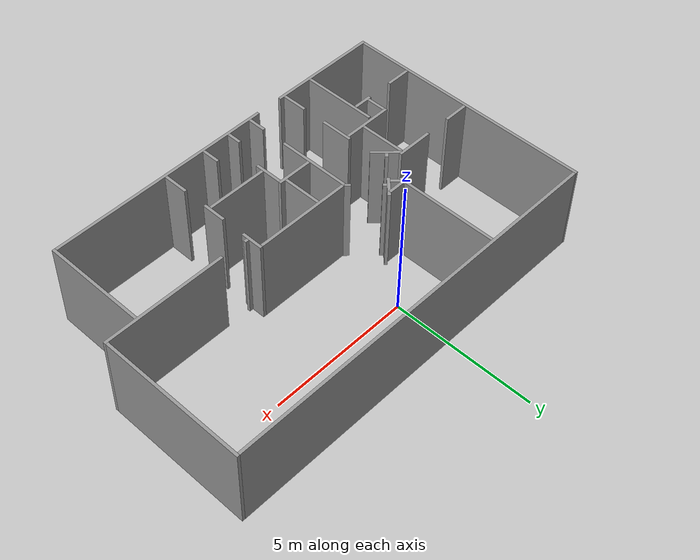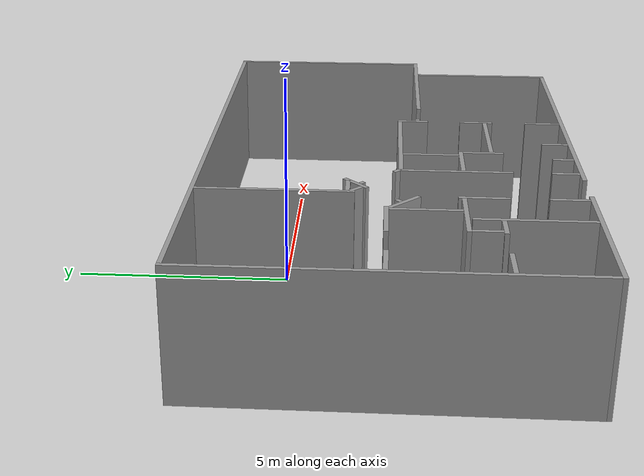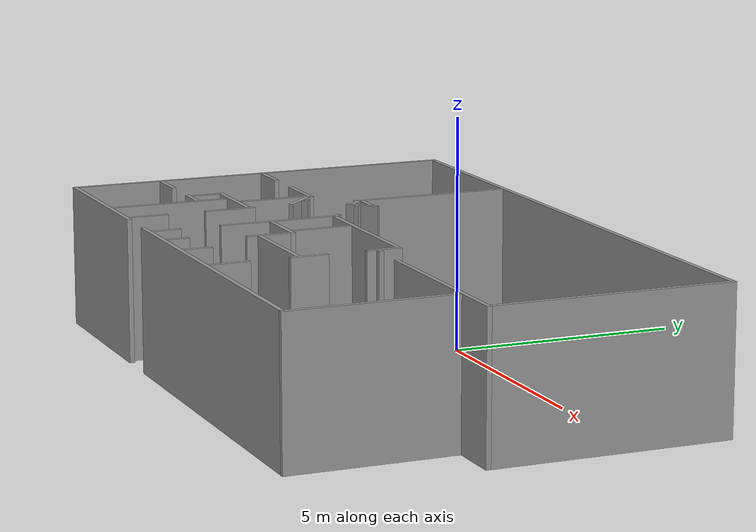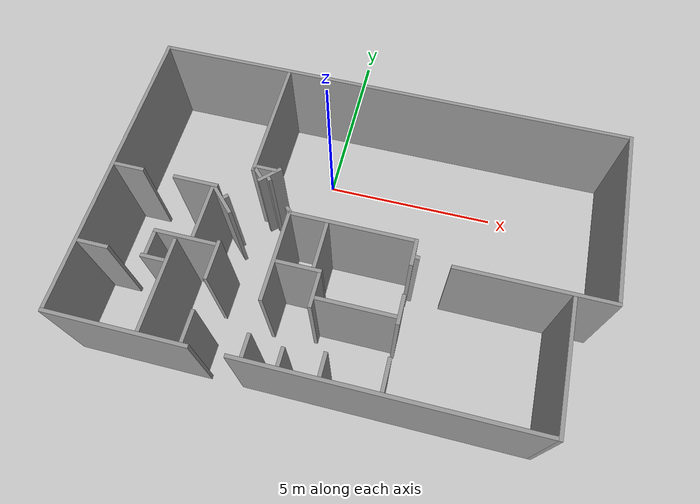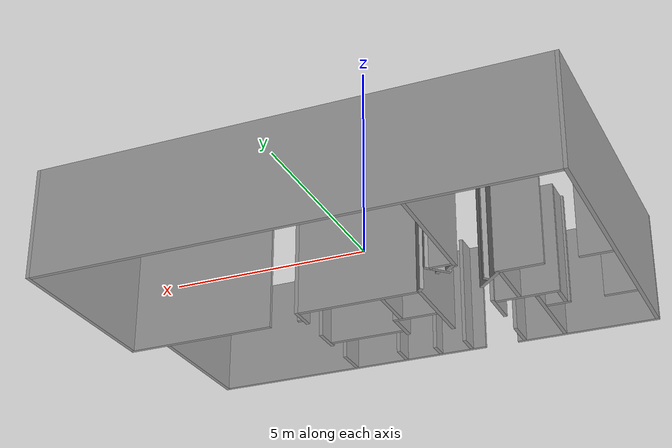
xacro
<?xml version="1.0"?>
<robot name="$(arg robot_name)" xmlns:xacro="http://www.ros.org/wiki/xacro">

  <!-- Peavy - This file was mostly auto-generated from an SDF to
       URDF conversion. Some slight modifications made to get
       it to load into Gazebo properly. -->

  <!-- in the case of multiple floors, have each structure link to its own floor -->

  <link name="building_footprint_link" />

  <!-- floor 1 -->
  <joint name="floor1_joint" type="fixed">
    <parent link="building_footprint_link" />
    <origin xyz="0 0 0" rpy="0 0 0" />
    <child link="floor1_link" />
  </joint>
  <link name="floor1_link">
    <inertial>
      <mass value="10000" />
      <com xyz="0 0 0.0" />
      <inertia ixx="10" ixy="0"  ixz="0"
                        iyy="10" iyz="0"
                                 izz="10" />
    </inertial>
    <visual>
      <origin xyz="0 0 0" rpy="0 0 0" />
      <geometry name="floor1_visual_geom">
        <box size="0.001 0.001 0.001" />
      </geometry>
    </visual>
    <collision>
      <origin xyz="0 0 0" rpy="0 0 0" />
      <geometry name="floor1_collision_geom">
        <box size="0.001 0.001 0.001" />
      </geometry>
    </collision>
  </link>
  <gazebo reference="floor1_link">
    <material>PR2/Grey</material>
    <mu1>50.0</mu1>
    <mu2>50.0</mu2>
    <kp>1000000000.0</kp>
    <kd>1.0</kd>
  </gazebo>

  <!-- building links and joints - these connect into the floor1_link -->

  <joint name="three_walls__Wall_0_joint" type="fixed" >
    <parent link="floor1_link" />
    <origin xyz="-6.3315 0.41704 0" rpy="0 0 0" />
    <child link="three_walls__Wall_0" />
  </joint>
  <gazebo reference="three_walls__Wall_0">
    <material>PR2/Grey2</material>
    <laserRetro>1000</laserRetro>
    <selfCollide>false</selfCollide>

  </gazebo>
  <joint name="three_walls__Wall_1_joint" type="fixed" >
    <parent link="floor1_link" />
    <origin xyz="-6.3315 0.41704 0" rpy="0 0 0" />
    <child link="three_walls__Wall_1" />
  </joint>
  <gazebo reference="three_walls__Wall_1">
    <material>PR2/Grey2</material>
    <laserRetro>1000</laserRetro>
    <selfCollide>false</selfCollide>

  </gazebo>
  <joint name="three_walls__Wall_2_joint" type="fixed" >
    <parent link="floor1_link" />
    <origin xyz="-6.3315 0.41704 0" rpy="0 0 0" />
    <child link="three_walls__Wall_2" />
  </joint>
  <gazebo reference="three_walls__Wall_2">
    <material>PR2/Grey2</material>
    <laserRetro>1000</laserRetro>
    <selfCollide>false</selfCollide>

  </gazebo>
  <joint name="three_walls__Wall_3_joint" type="fixed" >
    <parent link="floor1_link" />
    <origin xyz="-6.3315 0.41704 0" rpy="0 0 0" />
    <child link="three_walls__Wall_3" />
  </joint>
  <gazebo reference="three_walls__Wall_3">
    <material>PR2/Grey2</material>
    <laserRetro>1000</laserRetro>
    <selfCollide>false</selfCollide>

  </gazebo>
  <joint name="three_walls__Wall_4_joint" type="fixed" >
    <parent link="floor1_link" />
    <origin xyz="-6.3315 0.41704 0" rpy="0 0 0" />
    <child link="three_walls__Wall_4" />
  </joint>
  <gazebo reference="three_walls__Wall_4">
    <material>PR2/Grey2</material>
    <laserRetro>1000</laserRetro>
    <selfCollide>false</selfCollide>

  </gazebo>
  <joint name="three_walls__Wall_5_joint" type="fixed" >
    <parent link="floor1_link" />
    <origin xyz="-6.3315 0.41704 0" rpy="0 0 0" />
    <child link="three_walls__Wall_5" />
  </joint>
  <gazebo reference="three_walls__Wall_5">
    <material>PR2/Grey2</material>
    <laserRetro>1000</laserRetro>
    <selfCollide>false</selfCollide>

  </gazebo>
  <joint name="three_walls__Wall_6_joint" type="fixed" >
    <parent link="floor1_link" />
    <origin xyz="-6.3315 0.41704 0" rpy="0 0 0" />
    <child link="three_walls__Wall_6" />
  </joint>
  <gazebo reference="three_walls__Wall_6">
    <material>PR2/Grey2</material>
    <laserRetro>1000</laserRetro>
    <selfCollide>false</selfCollide>

  </gazebo>
  <joint name="three_walls__Wall_7_joint" type="fixed" >
    <parent link="floor1_link" />
    <origin xyz="-6.3315 0.41704 0" rpy="0 0 0" />
    <child link="three_walls__Wall_7" />
  </joint>
  <gazebo reference="three_walls__Wall_7">
    <material>PR2/Grey2</material>
    <laserRetro>1000</laserRetro>
    <selfCollide>false</selfCollide>

  </gazebo>
  <joint name="three_walls__Wall_8_joint" type="fixed" >
    <parent link="floor1_link" />
    <origin xyz="-6.3315 0.41704 0" rpy="0 0 0" />
    <child link="three_walls__Wall_8" />
  </joint>
  <gazebo reference="three_walls__Wall_8">
    <material>PR2/Grey2</material>
    <laserRetro>1000</laserRetro>
    <selfCollide>false</selfCollide>

  </gazebo>
  <joint name="three_walls__Wall_9_joint" type="fixed" >
    <parent link="floor1_link" />
    <origin xyz="-6.3315 0.41704 0" rpy="0 0 0" />
    <child link="three_walls__Wall_9" />
  </joint>
  <gazebo reference="three_walls__Wall_9">
    <material>PR2/Grey2</material>
    <laserRetro>1000</laserRetro>
    <selfCollide>false</selfCollide>

  </gazebo>
  <joint name="three_walls__Wall_10_joint" type="fixed" >
    <parent link="floor1_link" />
    <origin xyz="-6.3315 0.41704 0" rpy="0 0 0" />
    <child link="three_walls__Wall_10" />
  </joint>
  <gazebo reference="three_walls__Wall_10">
    <material>PR2/Grey2</material>
    <laserRetro>1000</laserRetro>
    <selfCollide>false</selfCollide>

  </gazebo>
  <joint name="three_walls__Wall_11_joint" type="fixed" >
    <parent link="floor1_link" />
    <origin xyz="-6.3315 0.41704 0" rpy="0 0 0" />
    <child link="three_walls__Wall_11" />
  </joint>
  <gazebo reference="three_walls__Wall_11">
    <material>PR2/Grey2</material>
    <laserRetro>1000</laserRetro>
    <selfCollide>false</selfCollide>

  </gazebo>
  <joint name="three_walls__Wall_12_joint" type="fixed" >
    <parent link="floor1_link" />
    <origin xyz="-6.3315 0.41704 0" rpy="0 0 0" />
    <child link="three_walls__Wall_12" />
  </joint>
  <gazebo reference="three_walls__Wall_12">
    <material>PR2/Grey2</material>
    <laserRetro>1000</laserRetro>
    <selfCollide>false</selfCollide>

  </gazebo>
  <joint name="three_walls__Wall_13_joint" type="fixed" >
    <parent link="floor1_link" />
    <origin xyz="-6.3315 0.41704 0" rpy="0 0 0" />
    <child link="three_walls__Wall_13" />
  </joint>
  <gazebo reference="three_walls__Wall_13">
    <material>PR2/Grey2</material>
    <laserRetro>1000</laserRetro>
    <selfCollide>false</selfCollide>

  </gazebo>
  <joint name="three_walls__Wall_14_joint" type="fixed" >
    <parent link="floor1_link" />
    <origin xyz="-6.3315 0.41704 0" rpy="0 0 0" />
    <child link="three_walls__Wall_14" />
  </joint>
  <gazebo reference="three_walls__Wall_14">
    <material>PR2/Grey2</material>
    <laserRetro>1000</laserRetro>
    <selfCollide>false</selfCollide>

  </gazebo>
  <joint name="three_walls__Wall_15_joint" type="fixed" >
    <parent link="floor1_link" />
    <origin xyz="-6.3315 0.41704 0" rpy="0 0 0" />
    <child link="three_walls__Wall_15" />
  </joint>
  <gazebo reference="three_walls__Wall_15">
    <material>PR2/Grey2</material>
    <laserRetro>1000</laserRetro>
    <selfCollide>false</selfCollide>

  </gazebo>
  <joint name="three_walls__Wall_16_joint" type="fixed" >
    <parent link="floor1_link" />
    <origin xyz="-6.3315 0.41704 0" rpy="0 0 0" />
    <child link="three_walls__Wall_16" />
  </joint>
  <gazebo reference="three_walls__Wall_16">
    <material>PR2/Grey2</material>
    <laserRetro>1000</laserRetro>
    <selfCollide>false</selfCollide>

  </gazebo>
  <joint name="three_walls__Wall_17_joint" type="fixed" >
    <parent link="floor1_link" />
    <origin xyz="-6.3315 0.41704 0" rpy="0 0 0" />
    <child link="three_walls__Wall_17" />
  </joint>
  <gazebo reference="three_walls__Wall_17">
    <material>PR2/Grey2</material>
    <laserRetro>1000</laserRetro>
    <selfCollide>false</selfCollide>

  </gazebo>
  <joint name="three_walls__Wall_18_joint" type="fixed" >
    <parent link="floor1_link" />
    <origin xyz="-6.3315 0.41704 0" rpy="0 0 0" />
    <child link="three_walls__Wall_18" />
  </joint>
  <gazebo reference="three_walls__Wall_18">
    <material>PR2/Grey2</material>
    <laserRetro>1000</laserRetro>
    <selfCollide>false</selfCollide>

  </gazebo>
  <joint name="three_walls__Wall_19_joint" type="fixed" >
    <parent link="floor1_link" />
    <origin xyz="-6.3315 0.41704 0" rpy="0 0 0" />
    <child link="three_walls__Wall_19" />
  </joint>
  <gazebo reference="three_walls__Wall_19">
    <material>PR2/Grey2</material>
    <laserRetro>1000</laserRetro>
    <selfCollide>false</selfCollide>

  </gazebo>
  <joint name="three_walls__Wall_20_joint" type="fixed" >
    <parent link="floor1_link" />
    <origin xyz="-6.3315 0.41704 0" rpy="0 0 0" />
    <child link="three_walls__Wall_20" />
  </joint>
  <gazebo reference="three_walls__Wall_20">
    <material>PR2/Grey2</material>
    <laserRetro>1000</laserRetro>
    <selfCollide>false</selfCollide>

  </gazebo>
  <joint name="three_walls__Wall_21_joint" type="fixed" >
    <parent link="floor1_link" />
    <origin xyz="-6.3315 0.41704 0" rpy="0 0 0" />
    <child link="three_walls__Wall_21" />
  </joint>
  <gazebo reference="three_walls__Wall_21">
    <material>PR2/Grey2</material>
    <laserRetro>1000</laserRetro>
    <selfCollide>false</selfCollide>

  </gazebo>
  <joint name="three_walls__Wall_22_joint" type="fixed" >
    <parent link="floor1_link" />
    <origin xyz="-6.3315 0.41704 0" rpy="0 0 0" />
    <child link="three_walls__Wall_22" />
  </joint>
  <gazebo reference="three_walls__Wall_22">
    <material>PR2/Grey2</material>
    <laserRetro>1000</laserRetro>
    <selfCollide>false</selfCollide>

  </gazebo>
  <joint name="three_walls__Wall_32_joint" type="fixed" >
    <parent link="floor1_link" />
    <origin xyz="-6.3315 0.41704 0" rpy="0 0 0" />
    <child link="three_walls__Wall_32" />
  </joint>
  <gazebo reference="three_walls__Wall_32">
    <material>PR2/Grey2</material>
    <laserRetro>1000</laserRetro>
    <selfCollide>false</selfCollide>

  </gazebo>
  <joint name="three_walls__Wall_33_joint" type="fixed" >
    <parent link="floor1_link" />
    <origin xyz="-6.3315 0.41704 0" rpy="0 0 0" />
    <child link="three_walls__Wall_33" />
  </joint>
  <gazebo reference="three_walls__Wall_33">
    <material>PR2/Grey2</material>
    <laserRetro>1000</laserRetro>
    <selfCollide>false</selfCollide>

  </gazebo>
  <joint name="three_walls__Wall_34_joint" type="fixed" >
    <parent link="floor1_link" />
    <origin xyz="-6.3315 0.41704 0" rpy="0 0 0" />
    <child link="three_walls__Wall_34" />
  </joint>
  <gazebo reference="three_walls__Wall_34">
    <material>PR2/Grey2</material>
    <laserRetro>1000</laserRetro>
    <selfCollide>false</selfCollide>

  </gazebo>
  <joint name="three_walls__Wall_35_joint" type="fixed" >
    <parent link="floor1_link" />
    <origin xyz="-6.3315 0.41704 0" rpy="0 0 0" />
    <child link="three_walls__Wall_35" />
  </joint>
  <gazebo reference="three_walls__Wall_35">
    <material>PR2/Grey2</material>
    <laserRetro>1000</laserRetro>
    <selfCollide>false</selfCollide>

  </gazebo>
  <joint name="three_walls__Wall_36_joint" type="fixed" >
    <parent link="floor1_link" />
    <origin xyz="-6.3315 0.41704 0" rpy="0 0 0" />
    <child link="three_walls__Wall_36" />
  </joint>
  <gazebo reference="three_walls__Wall_36">
    <material>PR2/Grey2</material>
    <laserRetro>1000</laserRetro>
    <selfCollide>false</selfCollide>

  </gazebo>
  <joint name="three_walls__Wall_37_joint" type="fixed" >
    <parent link="floor1_link" />
    <origin xyz="-6.3315 0.41704 0" rpy="0 0 0" />
    <child link="three_walls__Wall_37" />
  </joint>
  <gazebo reference="three_walls__Wall_37">
    <material>PR2/Grey2</material>
    <laserRetro>1000</laserRetro>
    <selfCollide>false</selfCollide>

  </gazebo>
  <joint name="three_walls__Wall_38_joint" type="fixed" >
    <parent link="floor1_link" />
    <origin xyz="-6.3315 0.41704 0" rpy="0 0 0" />
    <child link="three_walls__Wall_38" />
  </joint>
  <gazebo reference="three_walls__Wall_38">
    <material>PR2/Grey2</material>
    <laserRetro>1000</laserRetro>
    <selfCollide>false</selfCollide>

  </gazebo>
  <joint name="three_walls__Wall_39_joint" type="fixed" >
    <parent link="floor1_link" />
    <origin xyz="-6.3315 0.41704 0" rpy="0 0 0" />
    <child link="three_walls__Wall_39" />
  </joint>
  <gazebo reference="three_walls__Wall_39">
    <material>PR2/Grey2</material>
    <laserRetro>1000</laserRetro>
    <selfCollide>false</selfCollide>

  </gazebo>
  <joint name="three_walls__Wall_40_joint" type="fixed" >
    <parent link="floor1_link" />
    <origin xyz="-6.3315 0.41704 0" rpy="0 0 0" />
    <child link="three_walls__Wall_40" />
  </joint>
  <gazebo reference="three_walls__Wall_40">
    <material>PR2/Grey2</material>
    <laserRetro>1000</laserRetro>
    <selfCollide>false</selfCollide>

  </gazebo>
  <joint name="three_walls__Wall_41_joint" type="fixed" >
    <parent link="floor1_link" />
    <origin xyz="-6.3315 0.41704 0" rpy="0 0 0" />
    <child link="three_walls__Wall_41" />
  </joint>
  <gazebo reference="three_walls__Wall_41">
    <material>PR2/Grey2</material>
    <laserRetro>1000</laserRetro>
    <selfCollide>false</selfCollide>

  </gazebo>
  <joint name="three_walls__Wall_42_joint" type="fixed" >
    <parent link="floor1_link" />
    <origin xyz="-6.3315 0.41704 0" rpy="0 0 0" />
    <child link="three_walls__Wall_42" />
  </joint>
  <gazebo reference="three_walls__Wall_42">
    <material>PR2/Grey2</material>
    <laserRetro>1000</laserRetro>
    <selfCollide>false</selfCollide>

  </gazebo>
  <joint name="three_walls__Wall_43_joint" type="fixed" >
    <parent link="floor1_link" />
    <origin xyz="-6.3315 0.41704 0" rpy="0 0 0" />
    <child link="three_walls__Wall_43" />
  </joint>
  <gazebo reference="three_walls__Wall_43">
    <material>PR2/Grey2</material>
    <laserRetro>1000</laserRetro>
    <selfCollide>false</selfCollide>

  </gazebo>
  <joint name="three_walls__Wall_44_joint" type="fixed" >
    <parent link="floor1_link" />
    <origin xyz="-6.3315 0.41704 0" rpy="0 0 0" />
    <child link="three_walls__Wall_44" />
  </joint>
  <gazebo reference="three_walls__Wall_44">
    <material>PR2/Grey2</material>
    <laserRetro>1000</laserRetro>
    <selfCollide>false</selfCollide>

  </gazebo>
  <joint name="three_walls__Wall_45_joint" type="fixed" >
    <parent link="floor1_link" />
    <origin xyz="-6.3315 0.41704 0" rpy="0 0 0" />
    <child link="three_walls__Wall_45" />
  </joint>
  <gazebo reference="three_walls__Wall_45">
    <material>PR2/Grey2</material>
    <laserRetro>1000</laserRetro>
    <selfCollide>false</selfCollide>
  </gazebo>
  <joint name="three_walls__Wall_46_joint" type="fixed" >
    <parent link="floor1_link" />
    <origin xyz="-6.3315 0.41704 0" rpy="0 0 0" />
    <child link="three_walls__Wall_46" />
  </joint>
  <gazebo reference="three_walls__Wall_46">
    <material>PR2/Grey2</material>
    <laserRetro>1000</laserRetro>
    <selfCollide>false</selfCollide>
  </gazebo>

  <!-- generated links -->

  <link name="three_walls__Wall_0">
    <inertial>
      <mass value="0"/>
      <origin rpy="0  0  0" xyz="0  0  0"/>
      <inertia ixx="0" ixy="0" ixz="0" iyy="0" iyz="0" izz="0"/>
    </inertial>
    <collision name="three_walls__Wall_0_Collision">
      <origin rpy="0       0       3.14159" xyz="2.70472 -7.05239  1.524"/>
      <geometry>
        <box size="3.8508 0.1016 3.048"/>
      </geometry>
    </collision>
    <visual name="three_walls__Wall_0_Visual">
      <origin rpy="0       0       3.14159" xyz="2.70472 -7.05239  1.524"/>
      <geometry>
        <box size="3.8508 0.1016 3.048"/>
      </geometry>
    </visual>
  </link>
  <link name="three_walls__Wall_1">
    <inertial>
      <mass value="0"/>
      <origin rpy="0  0  0" xyz="0  0  0"/>
      <inertia ixx="0" ixy="0" ixz="0" iyy="0" iyz="0" izz="0"/>
    </inertial>
    <collision name="three_walls__Wall_1_Collision">
      <origin rpy="0      0      1.5708" xyz="0.83012 -2.73121  1.524"/>
      <geometry>
        <box size="8.54075 0.1016 3.048"/>
      </geometry>
    </collision>
    <visual name="three_walls__Wall_1_Visual">
      <origin rpy="0      0      1.5708" xyz="0.83012 -2.73121  1.524"/>
      <geometry>
        <box size="8.54075 0.1016 3.048"/>
      </geometry>
    </visual>
  </link>
  <link name="three_walls__Wall_2">
    <inertial>
      <mass value="0"/>
      <origin rpy="0  0  0" xyz="0  0  0"/>
      <inertia ixx="0" ixy="0" ixz="0" iyy="0" iyz="0" izz="0"/>
    </inertial>
    <collision name="three_walls__Wall_2_Collision">
      <origin rpy="0  0  0" xyz="7.6722   1.48836  1.524"/>
      <geometry>
        <box size="13.5826 0.1016 3.048"/>
      </geometry>
    </collision>
    <visual name="three_walls__Wall_2_Visual">
      <origin rpy="0  0  0" xyz="7.6722   1.48836  1.524"/>
      <geometry>
        <box size="13.5826 0.1016 3.048"/>
      </geometry>
    </visual>
  </link>
  <link name="three_walls__Wall_3">
    <inertial>
      <mass value="0"/>
      <origin rpy="0  0  0" xyz="0  0  0"/>
      <inertia ixx="0" ixy="0" ixz="0" iyy="0" iyz="0" izz="0"/>
    </inertial>
    <collision name="three_walls__Wall_3_Collision">
      <origin rpy="0      0      1.5708" xyz="13.4349   -5.34106   1.524"/>
      <geometry>
        <box size="3.52425 0.1016 3.048"/>
      </geometry>
    </collision>
    <visual name="three_walls__Wall_3_Visual">
      <origin rpy="0      0      1.5708" xyz="13.4349   -5.34106   1.524"/>
      <geometry>
        <box size="3.52425 0.1016 3.048"/>
      </geometry>
    </visual>
  </link>
  <link name="three_walls__Wall_4">
    <inertial>
      <mass value="0"/>
      <origin rpy="0  0  0" xyz="0  0  0"/>
      <inertia ixx="0" ixy="0" ixz="0" iyy="0" iyz="0" izz="0"/>
    </inertial>
    <collision name="three_walls__Wall_4_Collision">
      <origin rpy="0       0       3.14159" xyz="12.4498   -3.52814   1.524"/>
      <geometry>
        <box size="4.2308 0.1016 3.048"/>
      </geometry>
    </collision>
    <visual name="three_walls__Wall_4_Visual">
      <origin rpy="0       0       3.14159" xyz="12.4498   -3.52814   1.524"/>
      <geometry>
        <box size="4.2308 0.1016 3.048"/>
      </geometry>
    </visual>
  </link>
  <link name="three_walls__Wall_5">
    <inertial>
      <mass value="0"/>
      <origin rpy="0  0  0" xyz="0  0  0"/>
      <inertia ixx="0" ixy="0" ixz="0" iyy="0" iyz="0" izz="0"/>
    </inertial>
    <collision name="three_walls__Wall_5_Collision">
      <origin rpy="0      0      1.5708" xyz="14.5144   -0.96909   1.524"/>
      <geometry>
        <box size="5.0165 0.1016 3.048"/>
      </geometry>
    </collision>
    <visual name="three_walls__Wall_5_Visual">
      <origin rpy="0      0      1.5708" xyz="14.5144   -0.96909   1.524"/>
      <geometry>
        <box size="5.0165 0.1016 3.048"/>
      </geometry>
    </visual>
  </link>
  <link name="three_walls__Wall_6">
    <inertial>
      <mass value="0"/>
      <origin rpy="0  0  0" xyz="0  0  0"/>
      <inertia ixx="0" ixy="0" ixz="0" iyy="0" iyz="0" izz="0"/>
    </inertial>
    <collision name="three_walls__Wall_6_Collision">
      <origin rpy="0      0      1.5708" xyz="5.9355  -4.26379  1.524"/>
      <geometry>
        <box size="2.5508 0.1016 3.048"/>
      </geometry>
    </collision>
    <visual name="three_walls__Wall_6_Visual">
      <origin rpy="0      0      1.5708" xyz="5.9355  -4.26379  1.524"/>
      <geometry>
        <box size="2.5508 0.1016 3.048"/>
      </geometry>
    </visual>
  </link>
  <link name="three_walls__Wall_7">
    <inertial>
      <mass value="0"/>
      <origin rpy="0  0  0" xyz="0  0  0"/>
      <inertia ixx="0" ixy="0" ixz="0" iyy="0" iyz="0" izz="0"/>
    </inertial>
    <collision name="three_walls__Wall_7_Collision">
      <origin rpy="0      0      1.5708" xyz="9.3391  -3.36379  1.524"/>
      <geometry>
        <box size="0.7508 0.1016 3.048"/>
      </geometry>
    </collision>
    <visual name="three_walls__Wall_7_Visual">
      <origin rpy="0      0      1.5708" xyz="9.3391  -3.36379  1.524"/>
      <geometry>
        <box size="0.7508 0.1016 3.048"/>
      </geometry>
    </visual>
  </link>
  <link name="three_walls__Wall_8">
    <inertial>
      <mass value="0"/>
      <origin rpy="0  0  0" xyz="0  0  0"/>
      <inertia ixx="0" ixy="0" ixz="0" iyy="0" iyz="0" izz="0"/>
    </inertial>
    <collision name="three_walls__Wall_8_Collision">
      <origin rpy="0       0       3.14159" xyz="7.6373  -3.03919  1.524"/>
      <geometry>
        <box size="3.302 0.1016 3.048"/>
      </geometry>
    </collision>
    <visual name="three_walls__Wall_8_Visual">
      <origin rpy="0       0       3.14159" xyz="7.6373  -3.03919  1.524"/>
      <geometry>
        <box size="3.302 0.1016 3.048"/>
      </geometry>
    </visual>
  </link>
  <link name="three_walls__Wall_9">
    <inertial>
      <mass value="0"/>
      <origin rpy="0  0  0" xyz="0  0  0"/>
      <inertia ixx="0" ixy="0" ixz="0" iyy="0" iyz="0" izz="0"/>
    </inertial>
    <collision name="three_walls__Wall_9_Collision">
      <origin rpy="0       0      -0.78539" xyz="5.8891  -2.95358  1.524"/>
      <geometry>
        <box size="0.200057 0.1015 3.048"/>
      </geometry>
    </collision>
    <visual name="three_walls__Wall_9_Visual">
      <origin rpy="0       0      -0.78539" xyz="5.8891  -2.95358  1.524"/>
      <geometry>
        <box size="0.200057 0.1015 3.048"/>
      </geometry>
    </visual>
  </link>
  <link name="three_walls__Wall_10">
    <inertial>
      <mass value="0"/>
      <origin rpy="0  0  0" xyz="0  0  0"/>
      <inertia ixx="0" ixy="0" ixz="0" iyy="0" iyz="0" izz="0"/>
    </inertial>
    <collision name="three_walls__Wall_10_Collision">
      <origin rpy="0  0  0" xyz="3.21704 -2.71534  1.524"/>
      <geometry>
        <box size="1.26264 0.1015 3.048"/>
      </geometry>
    </collision>
    <visual name="three_walls__Wall_10_Visual">
      <origin rpy="0  0  0" xyz="3.21704 -2.71534  1.524"/>
      <geometry>
        <box size="1.26264 0.1015 3.048"/>
      </geometry>
    </visual>
  </link>
  <link name="three_walls__Wall_11">
    <inertial>
      <mass value="0"/>
      <origin rpy="0  0  0" xyz="0  0  0"/>
      <inertia ixx="0" ixy="0" ixz="0" iyy="0" iyz="0" izz="0"/>
    </inertial>
    <collision name="three_walls__Wall_11_Collision">
      <origin rpy="0       0      -0.78539" xyz="4.0834  -3.07301  1.524"/>
      <geometry>
        <box size="0.969558 0.1015 3.048"/>
      </geometry>
    </collision>
    <visual name="three_walls__Wall_11_Visual">
      <origin rpy="0       0      -0.78539" xyz="4.0834  -3.07301  1.524"/>
      <geometry>
        <box size="0.969558 0.1015 3.048"/>
      </geometry>
    </visual>
  </link>
  <link name="three_walls__Wall_12">
    <inertial>
      <mass value="0"/>
      <origin rpy="0  0  0" xyz="0  0  0"/>
      <inertia ixx="0" ixy="0" ixz="0" iyy="0" iyz="0" izz="0"/>
    </inertial>
    <collision name="three_walls__Wall_12_Collision">
      <origin rpy="0      0     -1.5708" xyz="4.42619 -6.57699  1.524"/>
      <geometry>
        <box size="0.8492 0.1016 3.048"/>
      </geometry>
    </collision>
    <visual name="three_walls__Wall_12_Visual">
      <origin rpy="0      0     -1.5708" xyz="4.42619 -6.57699  1.524"/>
      <geometry>
        <box size="0.8492 0.1016 3.048"/>
      </geometry>
    </visual>
  </link>
  <link name="three_walls__Wall_13">
    <inertial>
      <mass value="0"/>
      <origin rpy="0  0  0" xyz="0  0  0"/>
      <inertia ixx="0" ixy="0" ixz="0" iyy="0" iyz="0" izz="0"/>
    </inertial>
    <collision name="three_walls__Wall_13_Collision">
      <origin rpy="0      0     -1.5708" xyz="4.6147  -0.30015  1.524"/>
      <geometry>
        <box size="3.47544 0.1015 3.048"/>
      </geometry>
    </collision>
    <visual name="three_walls__Wall_13_Visual">
      <origin rpy="0      0     -1.5708" xyz="4.6147  -0.30015  1.524"/>
      <geometry>
        <box size="3.47544 0.1015 3.048"/>
      </geometry>
    </visual>
  </link>
  <link name="three_walls__Wall_14">
    <inertial>
      <mass value="0"/>
      <origin rpy="0  0  0" xyz="0  0  0"/>
      <inertia ixx="0" ixy="0" ixz="0" iyy="0" iyz="0" izz="0"/>
    </inertial>
    <collision name="three_walls__Wall_14_Collision">
      <origin rpy="0       0      -0.78539" xyz="4.7571  -2.05761  1.524"/>
      <geometry>
        <box size="0.360596 0.1015 3.048"/>
      </geometry>
    </collision>
    <visual name="three_walls__Wall_14_Visual">
      <origin rpy="0       0      -0.78539" xyz="4.7571  -2.05761  1.524"/>
      <geometry>
        <box size="0.360596 0.1015 3.048"/>
      </geometry>
    </visual>
  </link>
  <link name="three_walls__Wall_15">
    <inertial>
      <mass value="0"/>
      <origin rpy="0  0  0" xyz="0  0  0"/>
      <inertia ixx="0" ixy="0" ixz="0" iyy="0" iyz="0" izz="0"/>
    </inertial>
    <collision name="three_walls__Wall_15_Collision">
      <origin rpy="0       0       0.78539" xyz="5.0926  -2.04894  1.524"/>
      <geometry>
        <box size="0.722642 0.1015 3.048"/>
      </geometry>
    </collision>
    <visual name="three_walls__Wall_15_Visual">
      <origin rpy="0       0       0.78539" xyz="5.0926  -2.04894  1.524"/>
      <geometry>
        <box size="0.722642 0.1015 3.048"/>
      </geometry>
    </visual>
  </link>
  <link name="three_walls__Wall_16">
    <inertial>
      <mass value="0"/>
      <origin rpy="0  0  0" xyz="0  0  0"/>
      <inertia ixx="0" ixy="0" ixz="0" iyy="0" iyz="0" izz="0"/>
    </inertial>
    <collision name="three_walls__Wall_16_Collision">
      <origin rpy="0       0       3.14159" xyz="4.95289 -1.88017  1.524"/>
      <geometry>
        <box size="0.574782 0.1015 3.048"/>
      </geometry>
    </collision>
    <visual name="three_walls__Wall_16_Visual">
      <origin rpy="0       0       3.14159" xyz="4.95289 -1.88017  1.524"/>
      <geometry>
        <box size="0.574782 0.1015 3.048"/>
      </geometry>
    </visual>
  </link>
  <link name="three_walls__Wall_17">
    <inertial>
      <mass value="0"/>
      <origin rpy="0  0  0" xyz="0  0  0"/>
      <inertia ixx="0" ixy="0" ixz="0" iyy="0" iyz="0" izz="0"/>
    </inertial>
    <collision name="three_walls__Wall_17_Collision">
      <origin rpy="0       0       2.35618" xyz="5.1193  -2.18384  1.524"/>
      <geometry>
        <box size="0.127 0.1016 3.048"/>
      </geometry>
    </collision>
    <visual name="three_walls__Wall_17_Visual">
      <origin rpy="0       0       2.35618" xyz="5.1193  -2.18384  1.524"/>
      <geometry>
        <box size="0.127 0.1016 3.048"/>
      </geometry>
    </visual>
  </link>
  <link name="three_walls__Wall_18">
    <inertial>
      <mass value="0"/>
      <origin rpy="0  0  0" xyz="0  0  0"/>
      <inertia ixx="0" ixy="0" ixz="0" iyy="0" iyz="0" izz="0"/>
    </inertial>
    <collision name="three_walls__Wall_18_Collision">
      <origin rpy="0      0      1.5708" xyz="3.30858 -5.73159  1.524"/>
      <geometry>
        <box size="2.54 0.1016 3.048"/>
      </geometry>
    </collision>
    <visual name="three_walls__Wall_18_Visual">
      <origin rpy="0      0      1.5708" xyz="3.30858 -5.73159  1.524"/>
      <geometry>
        <box size="2.54 0.1016 3.048"/>
      </geometry>
    </visual>
  </link>
  <link name="three_walls__Wall_19">
    <inertial>
      <mass value="0"/>
      <origin rpy="0  0  0" xyz="0  0  0"/>
      <inertia ixx="0" ixy="0" ixz="0" iyy="0" iyz="0" izz="0"/>
    </inertial>
    <collision name="three_walls__Wall_19_Collision">
      <origin rpy="0       0       3.14159" xyz="3.52448 -4.35999  1.524"/>
      <geometry>
        <box size="1.7018 0.1016 3.048"/>
      </geometry>
    </collision>
    <visual name="three_walls__Wall_19_Visual">
      <origin rpy="0       0       3.14159" xyz="3.52448 -4.35999  1.524"/>
      <geometry>
        <box size="1.7018 0.1016 3.048"/>
      </geometry>
    </visual>
  </link>
  <link name="three_walls__Wall_20">
    <inertial>
      <mass value="0"/>
      <origin rpy="0  0  0" xyz="0  0  0"/>
      <inertia ixx="0" ixy="0" ixz="0" iyy="0" iyz="0" izz="0"/>
    </inertial>
    <collision name="three_walls__Wall_20_Collision">
      <origin rpy="0      0     -1.5708" xyz="2.72438 -4.72829  1.524"/>
      <geometry>
        <box size="0.635 0.1016 3.048"/>
      </geometry>
    </collision>
    <visual name="three_walls__Wall_20_Visual">
      <origin rpy="0      0     -1.5708" xyz="2.72438 -4.72829  1.524"/>
      <geometry>
        <box size="0.635 0.1016 3.048"/>
      </geometry>
    </visual>
  </link>
  <link name="three_walls__Wall_21">
    <inertial>
      <mass value="0"/>
      <origin rpy="0  0  0" xyz="0  0  0"/>
      <inertia ixx="0" ixy="0" ixz="0" iyy="0" iyz="0" izz="0"/>
    </inertial>
    <collision name="three_walls__Wall_21_Collision">
      <origin rpy="0       0       3.14159" xyz="2.93318 -5.09659  1.524"/>
      <geometry>
        <box size="0.6492 0.1016 3.048"/>
      </geometry>
    </collision>
    <visual name="three_walls__Wall_21_Visual">
      <origin rpy="0       0       3.14159" xyz="2.93318 -5.09659  1.524"/>
      <geometry>
        <box size="0.6492 0.1016 3.048"/>
      </geometry>
    </visual>
  </link>
  <link name="three_walls__Wall_22">
    <inertial>
      <mass value="0"/>
      <origin rpy="0  0  0" xyz="0  0  0"/>
      <inertia ixx="0" ixy="0" ixz="0" iyy="0" iyz="0" izz="0"/>
    </inertial>
    <collision name="three_walls__Wall_22_Collision">
      <origin rpy="0      0     -1.5708" xyz="3.7257  -3.53766  1.524"/>
      <geometry>
        <box size="1.54305 0.1015 3.048"/>
      </geometry>
    </collision>
    <visual name="three_walls__Wall_22_Visual">
      <origin rpy="0      0     -1.5708" xyz="3.7257  -3.53766  1.524"/>
      <geometry>
        <box size="1.54305 0.1015 3.048"/>
      </geometry>
    </visual>
  </link>
  <link name="three_walls__Wall_32">
    <inertial>
      <mass value="0"/>
      <origin rpy="0  0  0" xyz="0  0  0"/>
      <inertia ixx="0" ixy="0" ixz="0" iyy="0" iyz="0" izz="0"/>
    </inertial>
    <collision name="three_walls__Wall_32_Collision">
      <origin rpy="0       0       3.14159" xyz="8.2469  -5.14738  1.524"/>
      <geometry>
        <box size="2.0828 0.1016 3.048"/>
      </geometry>
    </collision>
    <visual name="three_walls__Wall_32_Visual">
      <origin rpy="0       0       3.14159" xyz="8.2469  -5.14738  1.524"/>
      <geometry>
        <box size="2.0828 0.1016 3.048"/>
      </geometry>
    </visual>
  </link>
  <link name="three_walls__Wall_33">
    <inertial>
      <mass value="0"/>
      <origin rpy="0  0  0" xyz="0  0  0"/>
      <inertia ixx="0" ixy="0" ixz="0" iyy="0" iyz="0" izz="0"/>
    </inertial>
    <collision name="three_walls__Wall_33_Collision">
      <origin rpy="0  0  0" xyz="6.5959  -4.43619  1.524"/>
      <geometry>
        <box size="1.2192 0.1016 3.048"/>
      </geometry>
    </collision>
    <visual name="three_walls__Wall_33_Visual">
      <origin rpy="0  0  0" xyz="6.5959  -4.43619  1.524"/>
      <geometry>
        <box size="1.2192 0.1016 3.048"/>
      </geometry>
    </visual>
  </link>
  <link name="three_walls__Wall_34">
    <inertial>
      <mass value="0"/>
      <origin rpy="0  0  0" xyz="0  0  0"/>
      <inertia ixx="0" ixy="0" ixz="0" iyy="0" iyz="0" izz="0"/>
    </inertial>
    <collision name="three_walls__Wall_34_Collision">
      <origin rpy="0      0     -1.5708" xyz="7.1547  -4.95688  1.524"/>
      <geometry>
        <box size="0.9398 0.1016 3.048"/>
      </geometry>
    </collision>
    <visual name="three_walls__Wall_34_Visual">
      <origin rpy="0      0     -1.5708" xyz="7.1547  -4.95688  1.524"/>
      <geometry>
        <box size="0.9398 0.1016 3.048"/>
      </geometry>
    </visual>
  </link>
  <link name="three_walls__Wall_35">
    <inertial>
      <mass value="0"/>
      <origin rpy="0  0  0" xyz="0  0  0"/>
      <inertia ixx="0" ixy="0" ixz="0" iyy="0" iyz="0" izz="0"/>
    </inertial>
    <collision name="three_walls__Wall_35_Collision">
      <origin rpy="0      0      1.5708" xyz="6.9769  -3.73769  1.524"/>
      <geometry>
        <box size="1.2954 0.1016 3.048"/>
      </geometry>
    </collision>
    <visual name="three_walls__Wall_35_Visual">
      <origin rpy="0      0      1.5708" xyz="6.9769  -3.73769  1.524"/>
      <geometry>
        <box size="1.2954 0.1016 3.048"/>
      </geometry>
    </visual>
  </link>
  <link name="three_walls__Wall_36">
    <inertial>
      <mass value="0"/>
      <origin rpy="0  0  0" xyz="0  0  0"/>
      <inertia ixx="0" ixy="0" ixz="0" iyy="0" iyz="0" izz="0"/>
    </inertial>
    <collision name="three_walls__Wall_36_Collision">
      <origin rpy="0      0      1.5708" xyz="6.8245  -6.76029  1.524"/>
      <geometry>
        <box size="0.4826 0.1016 3.048"/>
      </geometry>
    </collision>
    <visual name="three_walls__Wall_36_Visual">
      <origin rpy="0      0      1.5708" xyz="6.8245  -6.76029  1.524"/>
      <geometry>
        <box size="0.4826 0.1016 3.048"/>
      </geometry>
    </visual>
  </link>
  <link name="three_walls__Wall_37">
    <inertial>
      <mass value="0"/>
      <origin rpy="0  0  0" xyz="0  0  0"/>
      <inertia ixx="0" ixy="0" ixz="0" iyy="0" iyz="0" izz="0"/>
    </inertial>
    <collision name="three_walls__Wall_37_Collision">
      <origin rpy="0      0      1.5708" xyz="7.8405  -6.69679  1.524"/>
      <geometry>
        <box size="0.6096 0.1016 3.048"/>
      </geometry>
    </collision>
    <visual name="three_walls__Wall_37_Visual">
      <origin rpy="0      0      1.5708" xyz="7.8405  -6.69679  1.524"/>
      <geometry>
        <box size="0.6096 0.1016 3.048"/>
      </geometry>
    </visual>
  </link>
  <link name="three_walls__Wall_38">
    <inertial>
      <mass value="0"/>
      <origin rpy="0  0  0" xyz="0  0  0"/>
      <inertia ixx="0" ixy="0" ixz="0" iyy="0" iyz="0" izz="0"/>
    </inertial>
    <collision name="three_walls__Wall_38_Collision">
      <origin rpy="0  0  0" xyz="9.4545  -3.48814  1.524"/>
      <geometry>
        <box size="0.1292 0.1016 3.048"/>
      </geometry>
    </collision>
    <visual name="three_walls__Wall_38_Visual">
      <origin rpy="0  0  0" xyz="9.4545  -3.48814  1.524"/>
      <geometry>
        <box size="0.1292 0.1016 3.048"/>
      </geometry>
    </visual>
  </link>
  <link name="three_walls__Wall_39">
    <inertial>
      <mass value="0"/>
      <origin rpy="0  0  0" xyz="0  0  0"/>
      <inertia ixx="0" ixy="0" ixz="0" iyy="0" iyz="0" izz="0"/>
    </inertial>
    <collision name="three_walls__Wall_39_Collision">
      <origin rpy="0      0     -1.5708" xyz="9.3391  -4.93619  1.524"/>
      <geometry>
        <box size="0.8 0.1016 3.048"/>
      </geometry>
    </collision>
    <visual name="three_walls__Wall_39_Visual">
      <origin rpy="0      0     -1.5708" xyz="9.3391  -4.93619  1.524"/>
      <geometry>
        <box size="0.8 0.1016 3.048"/>
      </geometry>
    </visual>
  </link>
  <link name="three_walls__Wall_40">
    <inertial>
      <mass value="0"/>
      <origin rpy="0  0  0" xyz="0  0  0"/>
      <inertia ixx="0" ixy="0" ixz="0" iyy="0" iyz="0" izz="0"/>
    </inertial>
    <collision name="three_walls__Wall_40_Collision">
      <origin rpy="0      0     -1.5708" xyz="9.3391  -6.57699  1.524"/>
      <geometry>
        <box size="0.8492 0.1016 3.048"/>
      </geometry>
    </collision>
    <visual name="three_walls__Wall_40_Visual">
      <origin rpy="0      0     -1.5708" xyz="9.3391  -6.57699  1.524"/>
      <geometry>
        <box size="0.8492 0.1016 3.048"/>
      </geometry>
    </visual>
  </link>
  <link name="three_walls__Wall_41">
    <inertial>
      <mass value="0"/>
      <origin rpy="0  0  0" xyz="0  0  0"/>
      <inertia ixx="0" ixy="0" ixz="0" iyy="0" iyz="0" izz="0"/>
    </inertial>
    <collision name="three_walls__Wall_41_Collision">
      <origin rpy="0  0  0" xyz="9.4598  -7.05239  1.524"/>
      <geometry>
        <box size="7.84855 0.1016 3.048"/>
      </geometry>
    </collision>
    <visual name="three_walls__Wall_41_Visual">
      <origin rpy="0  0  0" xyz="9.4598  -7.05239  1.524"/>
      <geometry>
        <box size="7.84855 0.1016 3.048"/>
      </geometry>
    </visual>
  </link>
  <link name="three_walls__Wall_42">
    <inertial>
      <mass value="0"/>
      <origin rpy="0  0  0" xyz="0  0  0"/>
      <inertia ixx="0" ixy="0" ixz="0" iyy="0" iyz="0" izz="0"/>
    </inertial>
    <collision name="three_walls__Wall_42_Collision">
      <origin rpy="0       0       3.14159" xyz="1.30552 -5.09659  1.524"/>
      <geometry>
        <box size="0.8492 0.1016 3.048"/>
      </geometry>
    </collision>
    <visual name="three_walls__Wall_42_Visual">
      <origin rpy="0       0       3.14159" xyz="1.30552 -5.09659  1.524"/>
      <geometry>
        <box size="0.8492 0.1016 3.048"/>
      </geometry>
    </visual>
  </link>
  <link name="three_walls__Wall_43">
    <inertial>
      <mass value="0"/>
      <origin rpy="0  0  0" xyz="0  0  0"/>
      <inertia ixx="0" ixy="0" ixz="0" iyy="0" iyz="0" izz="0"/>
    </inertial>
    <collision name="three_walls__Wall_43_Collision">
      <origin rpy="0      0     -1.5708" xyz="4.42619 -4.78619  1.524"/>
      <geometry>
        <box size="1.1 0.1016 3.048"/>
      </geometry>
    </collision>
    <visual name="three_walls__Wall_43_Visual">
      <origin rpy="0      0     -1.5708" xyz="4.42619 -4.78619  1.524"/>
      <geometry>
        <box size="1.1 0.1016 3.048"/>
      </geometry>
    </visual>
  </link>
  <link name="three_walls__Wall_44">
    <inertial>
      <mass value="0"/>
      <origin rpy="0  0  0" xyz="0  0  0"/>
      <inertia ixx="0" ixy="0" ixz="0" iyy="0" iyz="0" izz="0"/>
    </inertial>
    <collision name="three_walls__Wall_44_Collision">
      <origin rpy="0       0       3.14159" xyz="1.30552 -2.71534  1.524"/>
      <geometry>
        <box size="0.8492 0.1016 3.048"/>
      </geometry>
    </collision>
    <visual name="three_walls__Wall_44_Visual">
      <origin rpy="0       0       3.14159" xyz="1.30552 -2.71534  1.524"/>
      <geometry>
        <box size="0.8492 0.1016 3.048"/>
      </geometry>
    </visual>
  </link>
  <link name="three_walls__Wall_45">
    <inertial>
      <mass value="0"/>
      <origin rpy="0  0  0" xyz="0  0  0"/>
      <inertia ixx="0" ixy="0" ixz="0" iyy="0" iyz="0" izz="0"/>
    </inertial>
    <collision name="three_walls__Wall_45_Collision">
      <origin rpy="0      0     -1.5708" xyz="5.9355  -6.69679  1.524"/>
      <geometry>
        <box size="0.6096 0.1016 3.048"/>
      </geometry>
    </collision>
    <visual name="three_walls__Wall_45_Visual">
      <origin rpy="0      0     -1.5708" xyz="5.9355  -6.69679  1.524"/>
      <geometry>
        <box size="0.6096 0.1016 3.048"/>
      </geometry>
    </visual>
  </link>
  <link name="three_walls__Wall_46">
    <inertial>
      <mass value="0"/>
      <origin rpy="0  0  0" xyz="0  0  0"/>
      <inertia ixx="0" ixy="0" ixz="0" iyy="0" iyz="0" izz="0"/>
    </inertial>
    <collision name="three_walls__Wall_46_Collision">
      <origin rpy="0       0       0.78539" xyz="4.1646 -2.9769  1.524"/>
      <geometry>
        <box size="0.1492 0.1016 3.048"/>
      </geometry>
    </collision>
    <visual name="three_walls__Wall_46_Visual">
      <origin rpy="0       0       0.78539" xyz="4.1646 -2.9769  1.524"/>
      <geometry>
        <box size="0.1492 0.1016 3.048"/>
      </geometry>
    </visual>
  </link>

  <!-- end generated -->

</robot>
